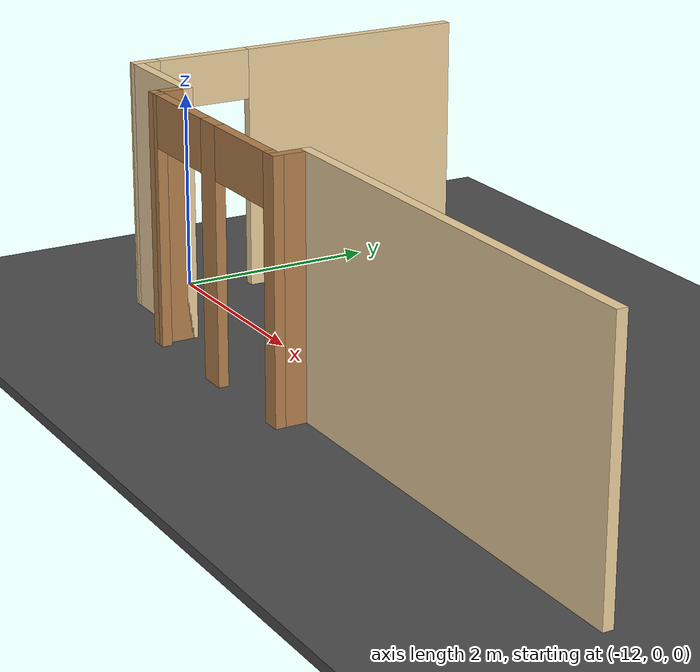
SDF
<sdf version="1.6">
 <world name="default">
  <model name="ground_plane">
   <static>1</static>
   <link name="link">
    <collision name="collision">
     <geometry><plane><normal>0 0 1</normal><size>100 100</size></plane></geometry>
     <surface><friction><ode><mu>100</mu><mu2>50</mu2></ode></friction></surface>
    </collision>
    <visual name="visual">
     <cast_shadows>0</cast_shadows>
     <geometry><plane><normal>0 0 1</normal><size>100 100</size></plane></geometry>
     <material>
      <script><uri>file://media/materials/scripts/gazebo.material</uri><name>Gazebo/Grey</name></script>
     </material>
    </visual>
   </link>
  </model>
  <model name="LawHall_Floor4.sdf">
   <link name="Wall_17">
    <pose>-0.2675 -1.5725 0 0 -0 3.14159</pose>
    <visual name="Wall_17_Visual">
     <pose>0 0 1.25 0 -0 0</pose>
     <geometry><box><size>4.445 0.1 2.5</size></box></geometry>
     <material>
      <script><uri>file://media/materials/scripts/gazebo.material</uri><name>Gazebo/Grey</name></script>
      <ambient>0.921569 0.807843 0.615686 1</ambient>
      <diffuse>0.7 0.7 0.7 1</diffuse>
      <specular>0.01 0.01 0.01 1</specular>
      <emissive>0 0 0 1</emissive>
     </material>
    </visual>
    <collision name="Wall_17_Collision">
     <pose>0 0 1.25 0 -0 0</pose>
     <geometry><box><size>4.445 0.1 2.5</size></box></geometry>
     <surface>
      <friction>
       <ode><mu>1</mu><mu2>1</mu2><fdir1>0 0 0</fdir1><slip1>0</slip1><slip2>0</slip2></ode>
       <torsional>
        <coefficient>1</coefficient>
        <patch_radius>0</patch_radius>
        <surface_radius>0</surface_radius>
        <use_patch_radius>1</use_patch_radius>
        <ode><slip>0</slip></ode>
       </torsional>
      </friction>
      <bounce><restitution_coefficient>0</restitution_coefficient><threshold>1e+06</threshold></bounce>
      <contact>
       <collide_without_contact>0</collide_without_contact>
       <collide_without_contact_bitmask>1</collide_without_contact_bitmask>
       <collide_bitmask>1</collide_bitmask>
       <ode>
        <soft_cfm>0</soft_cfm>
        <soft_erp>0.2</soft_erp>
        <kp>1e+13</kp>
        <kd>1</kd>
        <max_vel>0.01</max_vel>
        <min_depth>0</min_depth>
       </ode>
       <bullet>
        <split_impulse>1</split_impulse>
        <split_impulse_penetration_threshold>-0.01</split_impulse_penetration_threshold>
        <soft_cfm>0</soft_cfm>
        <soft_erp>0.2</soft_erp>
        <kp>1e+13</kp>
        <kd>1</kd>
       </bullet>
      </contact>
     </surface>
    </collision>
   </link>
   <link name="Wall_19">
    <pose>-2.44 -1.725 0 0 0 -1.5708</pose>
    <visual name="Wall_19_Visual">
     <pose>0 0 1.25 0 -0 0</pose>
     <geometry><box><size>0.405 0.1 2.5</size></box></geometry>
     <material>
      <script><uri>file://media/materials/scripts/gazebo.material</uri><name>Gazebo/Wood</name></script>
      <ambient>1 1 1 1</ambient>
      <diffuse>1 1 1 1</diffuse>
      <specular>0.2 0.2 0.2 1</specular>
      <emissive>0 0 0 1</emissive>
     </material>
    </visual>
    <collision name="Wall_19_Collision">
     <pose>0 0 1.25 0 -0 0</pose>
     <geometry><box><size>0.405 0.1 2.5</size></box></geometry>
     <surface>
      <friction>
       <ode><mu>1</mu><mu2>1</mu2><fdir1>0 0 0</fdir1><slip1>0</slip1><slip2>0</slip2></ode>
       <torsional>
        <coefficient>1</coefficient>
        <patch_radius>0</patch_radius>
        <surface_radius>0</surface_radius>
        <use_patch_radius>1</use_patch_radius>
        <ode><slip>0</slip></ode>
       </torsional>
      </friction>
      <bounce><restitution_coefficient>0</restitution_coefficient><threshold>1e+06</threshold></bounce>
      <contact>
       <collide_without_contact>0</collide_without_contact>
       <collide_without_contact_bitmask>1</collide_without_contact_bitmask>
       <collide_bitmask>1</collide_bitmask>
       <ode>
        <soft_cfm>0</soft_cfm>
        <soft_erp>0.2</soft_erp>
        <kp>1e+13</kp>
        <kd>1</kd>
        <max_vel>0.01</max_vel>
        <min_depth>0</min_depth>
       </ode>
       <bullet>
        <split_impulse>1</split_impulse>
        <split_impulse_penetration_threshold>-0.01</split_impulse_penetration_threshold>
        <soft_cfm>0</soft_cfm>
        <soft_erp>0.2</soft_erp>
        <kp>1e+13</kp>
        <kd>1</kd>
       </bullet>
      </contact>
     </surface>
    </collision>
   </link>
   <link name="Wall_2">
    <pose>-5.826 0.1525 0 0 0 -1.5708</pose>
    <visual name="Wall_2_Visual_0">
     <pose>-0.61409 0 1.25 0 -0 0</pose>
     <geometry><box><size>2.32182 0.1 2.5</size></box></geometry>
     <material>
      <script><uri>file://media/materials/scripts/gazebo.material</uri><name>Gazebo/Grey</name></script>
      <ambient>0.921569 0.807843 0.615686 1</ambient>
      <diffuse>0.7 0.7 0.7 1</diffuse>
      <specular>0.01 0.01 0.01 1</specular>
      <emissive>0 0 0 1</emissive>
     </material>
    </visual>
    <visual name="Wall_2_Visual_1">
     <pose>1.63741 0 1.25 0 -0 0</pose>
     <geometry><box><size>0.27518 0.1 2.5</size></box></geometry>
     <material>
      <script><uri>file://media/materials/scripts/gazebo.material</uri><name>Gazebo/Grey</name></script>
      <ambient>0.921569 0.807843 0.615686 1</ambient>
      <diffuse>0.7 0.7 0.7 1</diffuse>
      <specular>0.01 0.01 0.01 1</specular>
      <emissive>0 0 0 1</emissive>
     </material>
    </visual>
    <visual name="Wall_2_Visual_2">
     <pose>1.02332 0 2.25 0 -0 0</pose>
     <geometry><box><size>0.953 0.1 0.5</size></box></geometry>
     <material>
      <script><uri>file://media/materials/scripts/gazebo.material</uri><name>Gazebo/Grey</name></script>
      <ambient>0.921569 0.807843 0.615686 1</ambient>
      <diffuse>0.7 0.7 0.7 1</diffuse>
      <specular>0.01 0.01 0.01 1</specular>
      <emissive>0 0 0 1</emissive>
     </material>
    </visual>
    <collision name="Wall_2_Collision_1">
     <pose>1.63741 0 1.25 0 -0 0</pose>
     <geometry><box><size>0.27518 0.1 2.5</size></box></geometry>
     <surface>
      <friction>
       <ode><mu>1</mu><mu2>1</mu2><fdir1>0 0 0</fdir1><slip1>0</slip1><slip2>0</slip2></ode>
       <torsional>
        <coefficient>1</coefficient>
        <patch_radius>0</patch_radius>
        <surface_radius>0</surface_radius>
        <use_patch_radius>1</use_patch_radius>
        <ode><slip>0</slip></ode>
       </torsional>
      </friction>
      <bounce><restitution_coefficient>0</restitution_coefficient><threshold>1e+06</threshold></bounce>
      <contact>
       <collide_without_contact>0</collide_without_contact>
       <collide_without_contact_bitmask>1</collide_without_contact_bitmask>
       <collide_bitmask>1</collide_bitmask>
       <ode>
        <soft_cfm>0</soft_cfm>
        <soft_erp>0.2</soft_erp>
        <kp>1e+13</kp>
        <kd>1</kd>
        <max_vel>0.01</max_vel>
        <min_depth>0</min_depth>
       </ode>
       <bullet>
        <split_impulse>1</split_impulse>
        <split_impulse_penetration_threshold>-0.01</split_impulse_penetration_threshold>
        <soft_cfm>0</soft_cfm>
        <soft_erp>0.2</soft_erp>
        <kp>1e+13</kp>
        <kd>1</kd>
       </bullet>
      </contact>
     </surface>
    </collision>
    <collision name="Wall_2_Collision_2">
     <pose>1.02332 0 2.25 0 -0 0</pose>
     <geometry><box><size>0.953 0.1 0.5</size></box></geometry>
     <surface>
      <friction>
       <ode><mu>1</mu><mu2>1</mu2><fdir1>0 0 0</fdir1><slip1>0</slip1><slip2>0</slip2></ode>
       <torsional>
        <coefficient>1</coefficient>
        <patch_radius>0</patch_radius>
        <surface_radius>0</surface_radius>
        <use_patch_radius>1</use_patch_radius>
        <ode><slip>0</slip></ode>
       </torsional>
      </friction>
      <bounce><restitution_coefficient>0</restitution_coefficient><threshold>1e+06</threshold></bounce>
      <contact>
       <collide_without_contact>0</collide_without_contact>
       <collide_without_contact_bitmask>1</collide_without_contact_bitmask>
       <collide_bitmask>1</collide_bitmask>
       <ode>
        <soft_cfm>0</soft_cfm>
        <soft_erp>0.2</soft_erp>
        <kp>1e+13</kp>
        <kd>1</kd>
        <max_vel>0.01</max_vel>
        <min_depth>0</min_depth>
       </ode>
       <bullet>
        <split_impulse>1</split_impulse>
        <split_impulse_penetration_threshold>-0.01</split_impulse_penetration_threshold>
        <soft_cfm>0</soft_cfm>
        <soft_erp>0.2</soft_erp>
        <kp>1e+13</kp>
        <kd>1</kd>
       </bullet>
      </contact>
     </surface>
    </collision>
    <collision name="Wall_2_Collision_0">
     <pose>-0.61409 0 1.25 0 -0 0</pose>
     <geometry><box><size>2.32182 0.1 2.5</size></box></geometry>
     <surface>
      <friction>
       <ode><mu>1</mu><mu2>1</mu2><fdir1>0 0 0</fdir1><slip1>0</slip1><slip2>0</slip2></ode>
       <torsional>
        <coefficient>1</coefficient>
        <patch_radius>0</patch_radius>
        <surface_radius>0</surface_radius>
        <use_patch_radius>1</use_patch_radius>
        <ode><slip>0</slip></ode>
       </torsional>
      </friction>
      <bounce><restitution_coefficient>0</restitution_coefficient><threshold>1e+06</threshold></bounce>
      <contact>
       <collide_without_contact>0</collide_without_contact>
       <collide_without_contact_bitmask>1</collide_without_contact_bitmask>
       <collide_bitmask>1</collide_bitmask>
       <ode>
        <soft_cfm>0</soft_cfm>
        <soft_erp>0.2</soft_erp>
        <kp>1e+13</kp>
        <kd>1</kd>
        <max_vel>0.01</max_vel>
        <min_depth>0</min_depth>
       </ode>
       <bullet>
        <split_impulse>1</split_impulse>
        <split_impulse_penetration_threshold>-0.01</split_impulse_penetration_threshold>
        <soft_cfm>0</soft_cfm>
        <soft_erp>0.2</soft_erp>
        <kp>1e+13</kp>
        <kd>1</kd>
       </bullet>
      </contact>
     </surface>
    </collision>
   </link>
   <link name="Wall_21">
    <pose>-3.6015 -1.8775 0 0 -0 3.14159</pose>
    <visual name="Wall_21_Visual_2">
     <pose>1.12777 0 1.25 0 -0 0</pose>
     <geometry><box><size>0.167454 0.1 2.5</size></box></geometry>
     <material>
      <script><uri>file://media/materials/scripts/gazebo.material</uri><name>Gazebo/Wood</name></script>
      <ambient>1 1 1 1</ambient>
      <diffuse>1 1 1 1</diffuse>
      <specular>0.2 0.2 0.2 1</specular>
      <emissive>0 0 0 1</emissive>
     </material>
    </visual>
    <visual name="Wall_21_Visual_3">
     <pose>-0.578954 0 2.25 0 -0 0</pose>
     <geometry><box><size>0.9 0.1 0.5</size></box></geometry>
     <material>
      <script><uri>file://media/materials/scripts/gazebo.material</uri><name>Gazebo/Wood</name></script>
      <ambient>1 1 1 1</ambient>
      <diffuse>1 1 1 1</diffuse>
      <specular>0.2 0.2 0.2 1</specular>
      <emissive>0 0 0 1</emissive>
     </material>
    </visual>
    <visual name="Wall_21_Visual_4">
     <pose>0.594046 0 2.25 0 -0 0</pose>
     <geometry><box><size>0.9 0.1 0.5</size></box></geometry>
     <material>
      <script><uri>file://media/materials/scripts/gazebo.material</uri><name>Gazebo/Wood</name></script>
      <ambient>1 1 1 1</ambient>
      <diffuse>1 1 1 1</diffuse>
      <specular>0.2 0.2 0.2 1</specular>
      <emissive>0 0 0 1</emissive>
     </material>
    </visual>
    <visual name="Wall_21_Visual_0">
     <pose>-1.12023 0 1.25 0 -0 0</pose>
     <geometry><box><size>0.182546 0.1 2.5</size></box></geometry>
     <material>
      <script><uri>file://media/materials/scripts/gazebo.material</uri><name>Gazebo/Wood</name></script>
      <ambient>1 1 1 1</ambient>
      <diffuse>1 1 1 1</diffuse>
      <specular>0.2 0.2 0.2 1</specular>
      <emissive>0 0 0 1</emissive>
     </material>
    </visual>
    <visual name="Wall_21_Visual_1">
     <pose>0.007546 0 1.25 0 -0 0</pose>
     <geometry><box><size>0.273 0.1 2.5</size></box></geometry>
     <material>
      <script><uri>file://media/materials/scripts/gazebo.material</uri><name>Gazebo/Wood</name></script>
      <ambient>1 1 1 1</ambient>
      <diffuse>1 1 1 1</diffuse>
      <specular>0.2 0.2 0.2 1</specular>
      <emissive>0 0 0 1</emissive>
     </material>
    </visual>
    <collision name="Wall_21_Collision_0">
     <pose>-1.12023 0 1.25 0 -0 0</pose>
     <geometry><box><size>0.182546 0.1 2.5</size></box></geometry>
     <surface>
      <friction>
       <ode><mu>1</mu><mu2>1</mu2><fdir1>0 0 0</fdir1><slip1>0</slip1><slip2>0</slip2></ode>
       <torsional>
        <coefficient>1</coefficient>
        <patch_radius>0</patch_radius>
        <surface_radius>0</surface_radius>
        <use_patch_radius>1</use_patch_radius>
        <ode><slip>0</slip></ode>
       </torsional>
      </friction>
      <bounce><restitution_coefficient>0</restitution_coefficient><threshold>1e+06</threshold></bounce>
      <contact>
       <collide_without_contact>0</collide_without_contact>
       <collide_without_contact_bitmask>1</collide_without_contact_bitmask>
       <collide_bitmask>1</collide_bitmask>
       <ode>
        <soft_cfm>0</soft_cfm>
        <soft_erp>0.2</soft_erp>
        <kp>1e+13</kp>
        <kd>1</kd>
        <max_vel>0.01</max_vel>
        <min_depth>0</min_depth>
       </ode>
       <bullet>
        <split_impulse>1</split_impulse>
        <split_impulse_penetration_threshold>-0.01</split_impulse_penetration_threshold>
        <soft_cfm>0</soft_cfm>
        <soft_erp>0.2</soft_erp>
        <kp>1e+13</kp>
        <kd>1</kd>
       </bullet>
      </contact>
     </surface>
    </collision>
    <collision name="Wall_21_Collision_1">
     <pose>0.007546 0 1.25 0 -0 0</pose>
     <geometry><box><size>0.273 0.1 2.5</size></box></geometry>
     <surface>
      <friction>
       <ode><mu>1</mu><mu2>1</mu2><fdir1>0 0 0</fdir1><slip1>0</slip1><slip2>0</slip2></ode>
       <torsional>
        <coefficient>1</coefficient>
        <patch_radius>0</patch_radius>
        <surface_radius>0</surface_radius>
        <use_patch_radius>1</use_patch_radius>
        <ode><slip>0</slip></ode>
       </torsional>
      </friction>
      <bounce><restitution_coefficient>0</restitution_coefficient><threshold>1e+06</threshold></bounce>
      <contact>
       <collide_without_contact>0</collide_without_contact>
       <collide_without_contact_bitmask>1</collide_without_contact_bitmask>
       <collide_bitmask>1</collide_bitmask>
       <ode>
        <soft_cfm>0</soft_cfm>
        <soft_erp>0.2</soft_erp>
        <kp>1e+13</kp>
        <kd>1</kd>
        <max_vel>0.01</max_vel>
        <min_depth>0</min_depth>
       </ode>
       <bullet>
        <split_impulse>1</split_impulse>
        <split_impulse_penetration_threshold>-0.01</split_impulse_penetration_threshold>
        <soft_cfm>0</soft_cfm>
        <soft_erp>0.2</soft_erp>
        <kp>1e+13</kp>
        <kd>1</kd>
       </bullet>
      </contact>
     </surface>
    </collision>
    <collision name="Wall_21_Collision_2">
     <pose>1.12777 0 1.25 0 -0 0</pose>
     <geometry><box><size>0.167454 0.1 2.5</size></box></geometry>
     <surface>
      <friction>
       <ode><mu>1</mu><mu2>1</mu2><fdir1>0 0 0</fdir1><slip1>0</slip1><slip2>0</slip2></ode>
       <torsional>
        <coefficient>1</coefficient>
        <patch_radius>0</patch_radius>
        <surface_radius>0</surface_radius>
        <use_patch_radius>1</use_patch_radius>
        <ode><slip>0</slip></ode>
       </torsional>
      </friction>
      <bounce><restitution_coefficient>0</restitution_coefficient><threshold>1e+06</threshold></bounce>
      <contact>
       <collide_without_contact>0</collide_without_contact>
       <collide_without_contact_bitmask>1</collide_without_contact_bitmask>
       <collide_bitmask>1</collide_bitmask>
       <ode>
        <soft_cfm>0</soft_cfm>
        <soft_erp>0.2</soft_erp>
        <kp>1e+13</kp>
        <kd>1</kd>
        <max_vel>0.01</max_vel>
        <min_depth>0</min_depth>
       </ode>
       <bullet>
        <split_impulse>1</split_impulse>
        <split_impulse_penetration_threshold>-0.01</split_impulse_penetration_threshold>
        <soft_cfm>0</soft_cfm>
        <soft_erp>0.2</soft_erp>
        <kp>1e+13</kp>
        <kd>1</kd>
       </bullet>
      </contact>
     </surface>
    </collision>
    <collision name="Wall_21_Collision_3">
     <pose>-0.578954 0 2.25 0 -0 0</pose>
     <geometry><box><size>0.9 0.1 0.5</size></box></geometry>
     <surface>
      <friction>
       <ode><mu>1</mu><mu2>1</mu2><fdir1>0 0 0</fdir1><slip1>0</slip1><slip2>0</slip2></ode>
       <torsional>
        <coefficient>1</coefficient>
        <patch_radius>0</patch_radius>
        <surface_radius>0</surface_radius>
        <use_patch_radius>1</use_patch_radius>
        <ode><slip>0</slip></ode>
       </torsional>
      </friction>
      <bounce><restitution_coefficient>0</restitution_coefficient><threshold>1e+06</threshold></bounce>
      <contact>
       <collide_without_contact>0</collide_without_contact>
       <collide_without_contact_bitmask>1</collide_without_contact_bitmask>
       <collide_bitmask>1</collide_bitmask>
       <ode>
        <soft_cfm>0</soft_cfm>
        <soft_erp>0.2</soft_erp>
        <kp>1e+13</kp>
        <kd>1</kd>
        <max_vel>0.01</max_vel>
        <min_depth>0</min_depth>
       </ode>
       <bullet>
        <split_impulse>1</split_impulse>
        <split_impulse_penetration_threshold>-0.01</split_impulse_penetration_threshold>
        <soft_cfm>0</soft_cfm>
        <soft_erp>0.2</soft_erp>
        <kp>1e+13</kp>
        <kd>1</kd>
       </bullet>
      </contact>
     </surface>
    </collision>
    <collision name="Wall_21_Collision_4">
     <pose>0.594046 0 2.25 0 -0 0</pose>
     <geometry><box><size>0.9 0.1 0.5</size></box></geometry>
     <surface>
      <friction>
       <ode><mu>1</mu><mu2>1</mu2><fdir1>0 0 0</fdir1><slip1>0</slip1><slip2>0</slip2></ode>
       <torsional>
        <coefficient>1</coefficient>
        <patch_radius>0</patch_radius>
        <surface_radius>0</surface_radius>
        <use_patch_radius>1</use_patch_radius>
        <ode><slip>0</slip></ode>
       </torsional>
      </friction>
      <bounce><restitution_coefficient>0</restitution_coefficient><threshold>1e+06</threshold></bounce>
      <contact>
       <collide_without_contact>0</collide_without_contact>
       <collide_without_contact_bitmask>1</collide_without_contact_bitmask>
       <collide_bitmask>1</collide_bitmask>
       <ode>
        <soft_cfm>0</soft_cfm>
        <soft_erp>0.2</soft_erp>
        <kp>1e+13</kp>
        <kd>1</kd>
        <max_vel>0.01</max_vel>
        <min_depth>0</min_depth>
       </ode>
       <bullet>
        <split_impulse>1</split_impulse>
        <split_impulse_penetration_threshold>-0.01</split_impulse_penetration_threshold>
        <soft_cfm>0</soft_cfm>
        <soft_erp>0.2</soft_erp>
        <kp>1e+13</kp>
        <kd>1</kd>
       </bullet>
      </contact>
     </surface>
    </collision>
   </link>
   <link name="Wall_23">
    <pose>-4.763 -1.725 0 0 -0 1.5708</pose>
    <visual name="Wall_23_Visual">
     <pose>0 0 1.25 0 -0 0</pose>
     <geometry><box><size>0.405 0.1 2.5</size></box></geometry>
     <material>
      <script><uri>file://media/materials/scripts/gazebo.material</uri><name>Gazebo/Wood</name></script>
      <ambient>1 1 1 1</ambient>
      <diffuse>1 1 1 1</diffuse>
      <specular>0.2 0.2 0.2 1</specular>
      <emissive>0 0 0 1</emissive>
     </material>
    </visual>
    <collision name="Wall_23_Collision">
     <pose>0 0 1.25 0 -0 0</pose>
     <geometry><box><size>0.405 0.1 2.5</size></box></geometry>
     <surface>
      <friction>
       <ode><mu>1</mu><mu2>1</mu2><fdir1>0 0 0</fdir1><slip1>0</slip1><slip2>0</slip2></ode>
       <torsional>
        <coefficient>1</coefficient>
        <patch_radius>0</patch_radius>
        <surface_radius>0</surface_radius>
        <use_patch_radius>1</use_patch_radius>
        <ode><slip>0</slip></ode>
       </torsional>
      </friction>
      <bounce><restitution_coefficient>0</restitution_coefficient><threshold>1e+06</threshold></bounce>
      <contact>
       <collide_without_contact>0</collide_without_contact>
       <collide_without_contact_bitmask>1</collide_without_contact_bitmask>
       <collide_bitmask>1</collide_bitmask>
       <ode>
        <soft_cfm>0</soft_cfm>
        <soft_erp>0.2</soft_erp>
        <kp>1e+13</kp>
        <kd>1</kd>
        <max_vel>0.01</max_vel>
        <min_depth>0</min_depth>
       </ode>
       <bullet>
        <split_impulse>1</split_impulse>
        <split_impulse_penetration_threshold>-0.01</split_impulse_penetration_threshold>
        <soft_cfm>0</soft_cfm>
        <soft_erp>0.2</soft_erp>
        <kp>1e+13</kp>
        <kd>1</kd>
       </bullet>
      </contact>
     </surface>
    </collision>
   </link>
   <link name="Wall_27">
    <pose>-5.2945 -1.5725 0 0 -0 0</pose>
    <visual name="Wall_27_Visual">
     <pose>0 0 1.25 0 -0 0</pose>
     <geometry><box><size>1.163 0.1 2.5</size></box></geometry>
     <material>
      <script><uri>file://media/materials/scripts/gazebo.material</uri><name>Gazebo/Grey</name></script>
      <ambient>0.921569 0.807843 0.615686 1</ambient>
      <diffuse>0.7 0.7 0.7 1</diffuse>
      <specular>0.01 0.01 0.01 1</specular>
      <emissive>0 0 0 1</emissive>
     </material>
    </visual>
    <collision name="Wall_27_Collision">
     <pose>0 0 1.25 0 -0 0</pose>
     <geometry><box><size>1.163 0.1 2.5</size></box></geometry>
     <surface>
      <friction>
       <ode><mu>1</mu><mu2>1</mu2><fdir1>0 0 0</fdir1><slip1>0</slip1><slip2>0</slip2></ode>
       <torsional>
        <coefficient>1</coefficient>
        <patch_radius>0</patch_radius>
        <surface_radius>0</surface_radius>
        <use_patch_radius>1</use_patch_radius>
        <ode><slip>0</slip></ode>
       </torsional>
      </friction>
      <bounce><restitution_coefficient>0</restitution_coefficient><threshold>1e+06</threshold></bounce>
      <contact>
       <collide_without_contact>0</collide_without_contact>
       <collide_without_contact_bitmask>1</collide_without_contact_bitmask>
       <collide_bitmask>1</collide_bitmask>
       <ode>
        <soft_cfm>0</soft_cfm>
        <soft_erp>0.2</soft_erp>
        <kp>1e+13</kp>
        <kd>1</kd>
        <max_vel>0.01</max_vel>
        <min_depth>0</min_depth>
       </ode>
       <bullet>
        <split_impulse>1</split_impulse>
        <split_impulse_penetration_threshold>-0.01</split_impulse_penetration_threshold>
        <soft_cfm>0</soft_cfm>
        <soft_erp>0.2</soft_erp>
        <kp>1e+13</kp>
        <kd>1</kd>
       </bullet>
      </contact>
     </surface>
    </collision>
   </link>
   <static>1</static>
   <pose>-5.77166 0.8689 0 0 -0 0</pose>
  </model>
  <model name="asphalt_plane_1">
   <static>1</static>
   <link name="link">
    <collision name="collision"><geometry><box><size>20 20 0.1</size></box></geometry></collision>
    <visual name="visual">
     <cast_shadows>0</cast_shadows>
     <geometry><box><size>20 20 0.1</size></box></geometry>
     <material>
      <script>
       <uri>model://asphalt_plane/materials/scripts</uri>
       <uri>model://asphalt_plane/materials/textures</uri>
       <name>vrc/asphalt</name>
      </script>
     </material>
    </visual>
   </link>
   <pose>-7.81647 1.26447 0 0 -0 0</pose>
  </model>
  <model name="AddRedCube">
   <link name="link_0">
    <inertial>
     <mass>0.0445752</mass>
     <inertia>
      <ixx>0.00087893</ixx>
      <ixy>0</ixy>
      <ixz>0</ixz>
      <iyy>0.0010575</iyy>
      <iyz>0</iyz>
      <izz>0.00090765</izz>
     </inertia>
    </inertial>
    <visual name="visual">
     <geometry><box><size>0.382377 0.313267 0.372127</size></box></geometry>
     <material>
      <lighting>1</lighting>
      <script><uri>file://media/materials/scripts/gazebo.material</uri><name>Gazebo/Grey</name></script>
      <ambient>1 0 0 1</ambient>
      <diffuse>0.9 0.2 0 1</diffuse>
      <specular>0.61 0.01 0.01 1</specular>
      <emissive>0.8 0 0 1</emissive>
      <shader type="vertex"><normal_map>__default__</normal_map></shader>
     </material>
    </visual>
    <collision name="collision">
     <geometry><box><size>0.382377 0.313267 0.372127</size></box></geometry>
     <surface>
      <friction>
       <ode><mu>1</mu><mu2>1</mu2><fdir1>0 0 0</fdir1><slip1>0</slip1><slip2>0</slip2></ode>
       <torsional>
        <coefficient>1</coefficient>
        <patch_radius>0</patch_radius>
        <surface_radius>0</surface_radius>
        <use_patch_radius>1</use_patch_radius>
        <ode><slip>0</slip></ode>
       </torsional>
      </friction>
      <bounce><restitution_coefficient>0</restitution_coefficient><threshold>1e+06</threshold></bounce>
      <contact>
       <collide_without_contact>0</collide_without_contact>
       <collide_without_contact_bitmask>1</collide_without_contact_bitmask>
       <collide_bitmask>1</collide_bitmask>
       <ode>
        <soft_cfm>0</soft_cfm>
        <soft_erp>0.2</soft_erp>
        <kp>1e+13</kp>
        <kd>1</kd>
        <max_vel>0.01</max_vel>
        <min_depth>0</min_depth>
       </ode>
       <bullet>
        <split_impulse>1</split_impulse>
        <split_impulse_penetration_threshold>-0.01</split_impulse_penetration_threshold>
        <soft_cfm>0</soft_cfm>
        <soft_erp>0.2</soft_erp>
        <kp>1e+13</kp>
        <kd>1</kd>
       </bullet>
      </contact>
     </surface>
    </collision>
   </link>
   <static>0</static>
   <pose>-6.31239 -0.025627 0.235926 0.000878 -1e-06 0.026814</pose>
  </model>
 </world>
</sdf>
